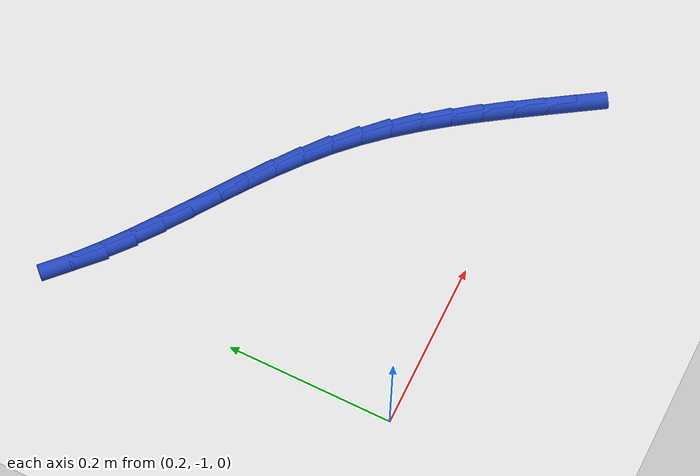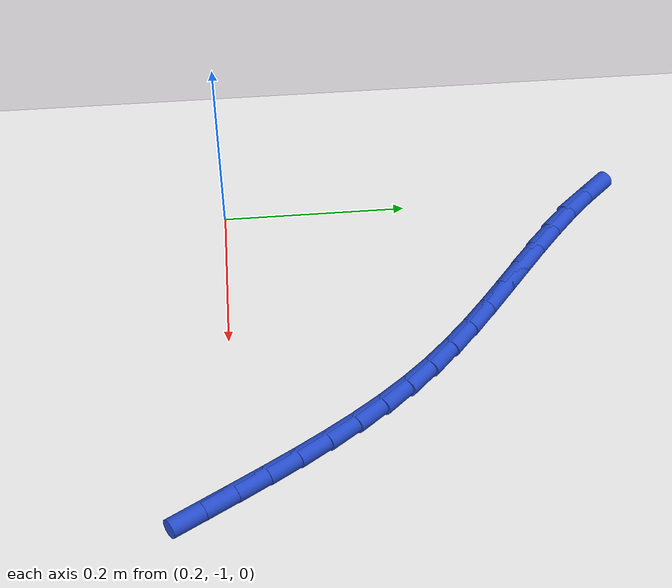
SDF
<sdf version="1.6">
 <world name="default">
  <model name="ground_plane">
   <static>1</static>
   <link name="link">
    <collision name="collision">
     <geometry><plane><normal>0 0 1</normal><size>100 100</size></plane></geometry>
     <surface><friction><ode><mu>100</mu><mu2>50</mu2></ode></friction></surface>
    </collision>
    <visual name="visual">
     <cast_shadows>0</cast_shadows>
     <geometry><plane><normal>0 0 1</normal><size>100 100</size></plane></geometry>
     <material>
      <script><uri>file://media/materials/scripts/gazebo.material</uri><name>Gazebo/WhiteGlow</name></script>
     </material>
    </visual>
   </link>
  </model>
  <model name="line">
   <link name="link_185">
    <pose>0.6363596152802624 -1.0254997905356158 0.01 0 1.57 -1.0088684122453557</pose>
    <collision name="collision">
     <geometry><cylinder><radius>0.01</radius><length>0.08</length></cylinder></geometry>
    </collision>
    <visual name="visual">
     <material>
      <script><name>Gazebo/Blue</name><uri>file://media/materials/scripts/gazebo.material</uri></script>
     </material>
     <geometry><cylinder><radius>0.01</radius><length>0.08</length></cylinder></geometry>
    </visual>
   </link>
   <link name="link_186">
    <pose>0.6170963126741015 -0.994905564484553 0.01 0 1.57 -1.0039850650414195</pose>
    <collision name="collision">
     <geometry><cylinder><radius>0.01</radius><length>0.08</length></cylinder></geometry>
    </collision>
    <visual name="visual">
     <material>
      <script><name>Gazebo/Blue</name><uri>file://media/materials/scripts/gazebo.material</uri></script>
     </material>
     <geometry><cylinder><radius>0.01</radius><length>0.08</length></cylinder></geometry>
    </visual>
   </link>
   <link name="link_187">
    <pose>0.5977247636608167 -0.9644700721620608 0.01 0 1.57 -0.9906733845814061</pose>
    <collision name="collision">
     <geometry><cylinder><radius>0.01</radius><length>0.08</length></cylinder></geometry>
    </collision>
    <visual name="visual">
     <material>
      <script><name>Gazebo/Blue</name><uri>file://media/materials/scripts/gazebo.material</uri></script>
     </material>
     <geometry><cylinder><radius>0.01</radius><length>0.08</length></cylinder></geometry>
    </visual>
   </link>
   <link name="link_188">
    <pose>0.5780111283330132 -0.9343887255914566 0.01 0 1.57 -0.9688204566966498</pose>
    <collision name="collision">
     <geometry><cylinder><radius>0.01</radius><length>0.08</length></cylinder></geometry>
    </collision>
    <visual name="visual">
     <material>
      <script><name>Gazebo/Blue</name><uri>file://media/materials/scripts/gazebo.material</uri></script>
     </material>
     <geometry><cylinder><radius>0.01</radius><length>0.08</length></cylinder></geometry>
    </visual>
   </link>
   <link name="link_189">
    <pose>0.5577215667832965 -0.904856936796059 0.01 0 1.57 -0.9382961663637285</pose>
    <collision name="collision">
     <geometry><cylinder><radius>0.01</radius><length>0.08</length></cylinder></geometry>
    </collision>
    <visual name="visual">
     <material>
      <script><name>Gazebo/Blue</name><uri>file://media/materials/scripts/gazebo.material</uri></script>
     </material>
     <geometry><cylinder><radius>0.01</radius><length>0.08</length></cylinder></geometry>
    </visual>
   </link>
   <link name="link_190">
    <pose>0.5366222391042716 -0.8760701177991861 0.01 0 1.57 -0.8990012433523358</pose>
    <collision name="collision">
     <geometry><cylinder><radius>0.01</radius><length>0.08</length></cylinder></geometry>
    </collision>
    <visual name="visual">
     <material>
      <script><name>Gazebo/Blue</name><uri>file://media/materials/scripts/gazebo.material</uri></script>
     </material>
     <geometry><cylinder><radius>0.01</radius><length>0.08</length></cylinder></geometry>
    </visual>
   </link>
   <link name="link_191">
    <pose>0.5144793053885455 -0.848223680624158 0.01 0 1.57 -0.8509374468100109</pose>
    <collision name="collision">
     <geometry><cylinder><radius>0.01</radius><length>0.08</length></cylinder></geometry>
    </collision>
    <visual name="visual">
     <material>
      <script><name>Gazebo/Blue</name><uri>file://media/materials/scripts/gazebo.material</uri></script>
     </material>
     <geometry><cylinder><radius>0.01</radius><length>0.08</length></cylinder></geometry>
    </visual>
   </link>
   <link name="link_192">
    <pose>0.4910589257287228 -0.8215130372942924 0.01 0 1.57 -0.7943230738544895</pose>
    <collision name="collision">
     <geometry><cylinder><radius>0.01</radius><length>0.08</length></cylinder></geometry>
    </collision>
    <visual name="visual">
     <material>
      <script><name>Gazebo/Blue</name><uri>file://media/materials/scripts/gazebo.material</uri></script>
     </material>
     <geometry><cylinder><radius>0.01</radius><length>0.08</length></cylinder></geometry>
    </visual>
   </link>
   <link name="link_193">
    <pose>0.4661279411937136 -0.7961330196473098 0.01 0 1.57 -0.7355382899438416</pose>
    <collision name="collision">
     <geometry><cylinder><radius>0.01</radius><length>0.08</length></cylinder></geometry>
    </collision>
    <visual name="visual">
     <material>
      <script><name>Gazebo/Blue</name><uri>file://media/materials/scripts/gazebo.material</uri></script>
     </material>
     <geometry><cylinder><radius>0.01</radius><length>0.08</length></cylinder></geometry>
    </visual>
   </link>
   <link name="link_194">
    <pose>0.43961513184131695 -0.7721404889800398 0.01 0 1.57 -0.688351539933443</pose>
    <collision name="collision">
     <geometry><cylinder><radius>0.01</radius><length>0.08</length></cylinder></geometry>
    </collision>
    <visual name="visual">
     <material>
      <script><name>Gazebo/Blue</name><uri>file://media/materials/scripts/gazebo.material</uri></script>
     </material>
     <geometry><cylinder><radius>0.01</radius><length>0.08</length></cylinder></geometry>
    </visual>
   </link>
   <link name="link_195">
    <pose>0.41181962128409966 -0.7492767772599139 0.01 0 1.57 -0.6543681157029309</pose>
    <collision name="collision">
     <geometry><cylinder><radius>0.01</radius><length>0.08</length></cylinder></geometry>
    </collision>
    <visual name="visual">
     <material>
      <script><name>Gazebo/Blue</name><uri>file://media/materials/scripts/gazebo.material</uri></script>
     </material>
     <geometry><cylinder><radius>0.01</radius><length>0.08</length></cylinder></geometry>
    </visual>
   </link>
   <link name="link_196">
    <pose>0.3830920740965 -0.7272393040251475 0.01 0 1.57 -0.6332059146680288</pose>
    <collision name="collision">
     <geometry><cylinder><radius>0.01</radius><length>0.08</length></cylinder></geometry>
    </collision>
    <visual name="visual">
     <material>
      <script><name>Gazebo/Blue</name><uri>file://media/materials/scripts/gazebo.material</uri></script>
     </material>
     <geometry><cylinder><radius>0.01</radius><length>0.08</length></cylinder></geometry>
    </visual>
   </link>
   <link name="link_197">
    <pose>0.35378315485295375 -0.7057254888139546 0.01 0 1.57 -0.6245625267988233</pose>
    <collision name="collision">
     <geometry><cylinder><radius>0.01</radius><length>0.08</length></cylinder></geometry>
    </collision>
    <visual name="visual">
     <material>
      <script><name>Gazebo/Blue</name><uri>file://media/materials/scripts/gazebo.material</uri></script>
     </material>
     <geometry><cylinder><radius>0.01</radius><length>0.08</length></cylinder></geometry>
    </visual>
   </link>
   <link name="link_198">
    <pose>0.32424352812789764 -0.6844327511645495 0.01 0 1.57 -0.6283096184279354</pose>
    <collision name="collision">
     <geometry><cylinder><radius>0.01</radius><length>0.08</length></cylinder></geometry>
    </collision>
    <visual name="visual">
     <material>
      <script><name>Gazebo/Blue</name><uri>file://media/materials/scripts/gazebo.material</uri></script>
     </material>
     <geometry><cylinder><radius>0.01</radius><length>0.08</length></cylinder></geometry>
    </visual>
   </link>
   <link name="link_199">
    <pose>0.2948238584957677 -0.6630585106151462 0.01 0 1.57 -0.6445291669399933</pose>
    <collision name="collision">
     <geometry><cylinder><radius>0.01</radius><length>0.08</length></cylinder></geometry>
    </collision>
    <visual name="visual">
     <material>
      <script><name>Gazebo/Blue</name><uri>file://media/materials/scripts/gazebo.material</uri></script>
     </material>
     <geometry><cylinder><radius>0.01</radius><length>0.08</length></cylinder></geometry>
    </visual>
   </link>
   <link name="link_200">
    <pose>0.26587481053100226 -0.6413001867039604 0.01 0 1.57 -0.673499254821005</pose>
    <collision name="collision">
     <geometry><cylinder><radius>0.01</radius><length>0.08</length></cylinder></geometry>
    </collision>
    <visual name="visual">
     <material>
      <script><name>Gazebo/Blue</name><uri>file://media/materials/scripts/gazebo.material</uri></script>
     </material>
     <geometry><cylinder><radius>0.01</radius><length>0.08</length></cylinder></geometry>
    </visual>
   </link>
   <link name="link_201">
    <pose>0.23774704880803704 -0.6188551989692058 0.01 0 1.57 -0.7156252049666757</pose>
    <collision name="collision">
     <geometry><cylinder><radius>0.01</radius><length>0.08</length></cylinder></geometry>
    </collision>
    <visual name="visual">
     <material>
      <script><name>Gazebo/Blue</name><uri>file://media/materials/scripts/gazebo.material</uri></script>
     </material>
     <geometry><cylinder><radius>0.01</radius><length>0.08</length></cylinder></geometry>
    </visual>
   </link>
   <link name="link_202">
    <pose>0.21079123790130863 -0.5954209669490969 0.01 0 1.57 -0.7713012246621358</pose>
    <collision name="collision">
     <geometry><cylinder><radius>0.01</radius><length>0.08</length></cylinder></geometry>
    </collision>
    <visual name="visual">
     <material>
      <script><name>Gazebo/Blue</name><uri>file://media/materials/scripts/gazebo.material</uri></script>
     </material>
     <geometry><cylinder><radius>0.01</radius><length>0.08</length></cylinder></geometry>
    </visual>
   </link>
  </model>
 </world>
</sdf>
